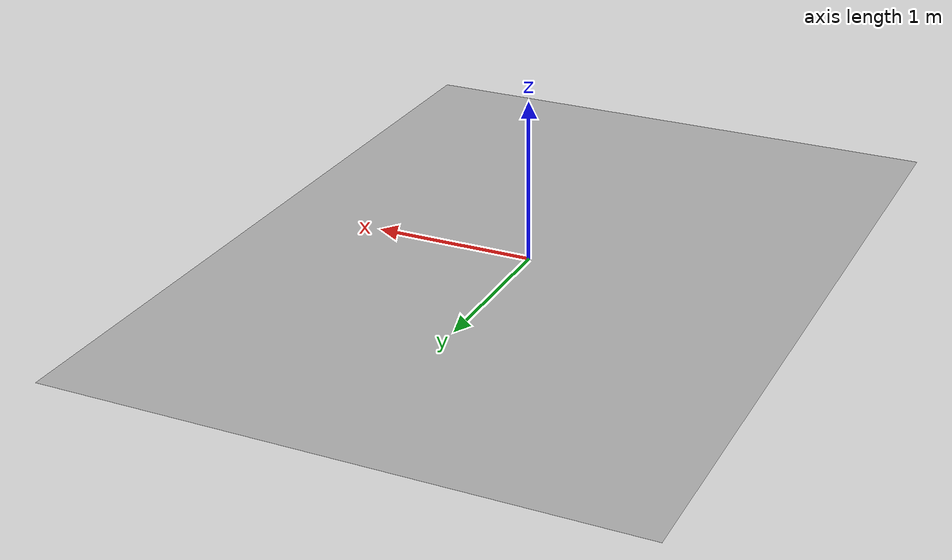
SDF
<?xml version="1.0" ?>
<sdf version="1.5">
  <model name="billboard_4">
    <static>true</static>
      <link name="billboard_4">
        <collision name="billboard-collision">
          <pose>0 0 0 0 0 0</pose>
          <geometry>
            <box>
              <size>3.5 4.8 0.00</size>
            </box>
          </geometry>
        </collision>
        <visual name="billboard-visual">
          <pose>0 0 0 0 0 0</pose>
          <geometry>
            <box>
              <size>3.5 4.8 0.00</size>
            </box>
          </geometry>
          <material>
            <script>
              <uri>model://billboard_4/materials/scripts</uri>
              <uri>model://billboard_4/materials/textures</uri>
              <name>billboard_4/Diffuse</name>
            </script>
          </material>
        </visual>
      </link>
  </model>
</sdf>
